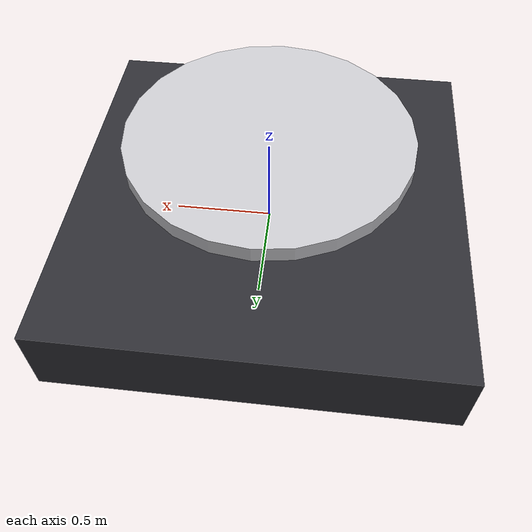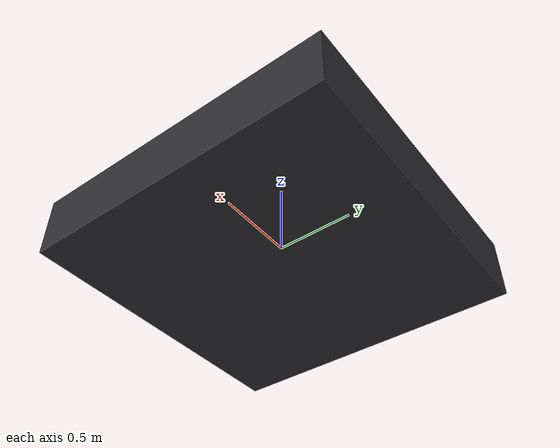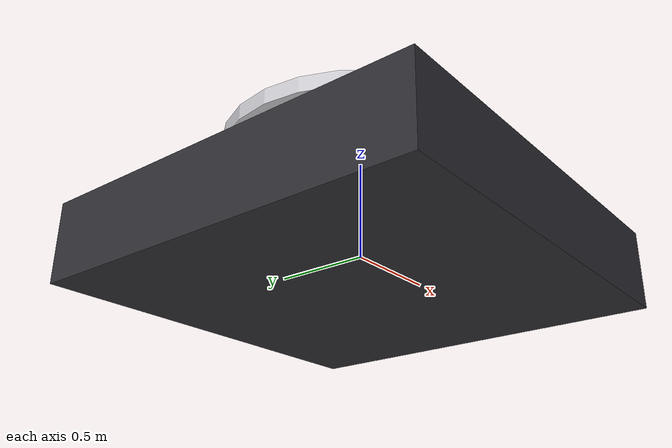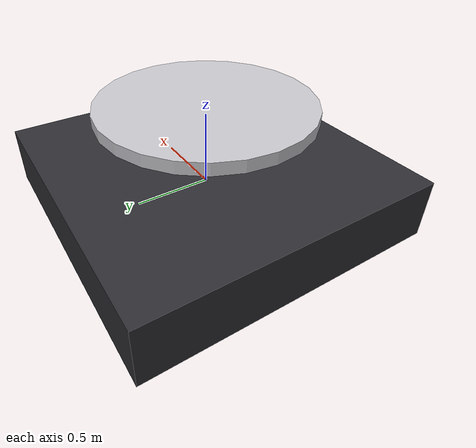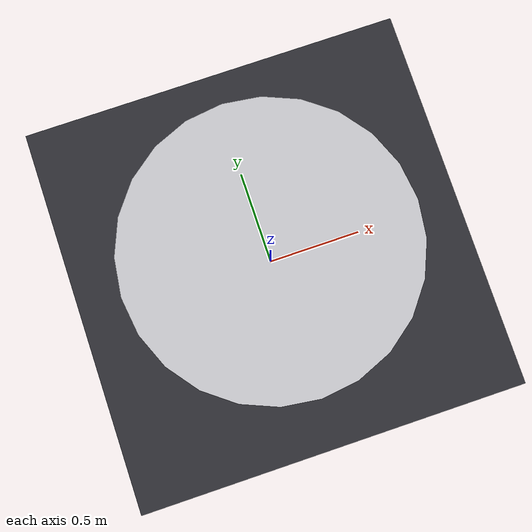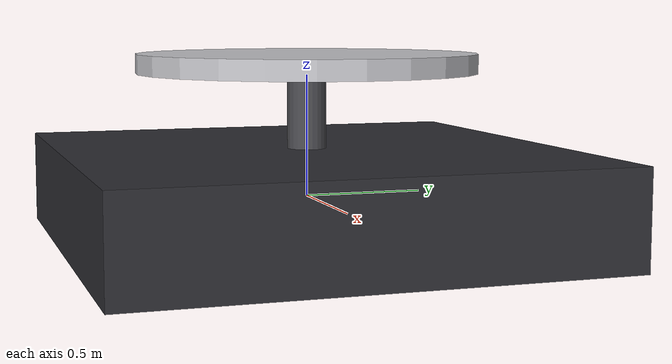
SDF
<?xml version='1.0'?>
<sdf version='1.6'>
  <model name='radar_simple'>
    <static>true</static>
    <link name='link'>
      <pose>0 0 0 0 0 0</pose>
      <!-- Base platform -->
      <visual name='platform'>
        <geometry>
          <box>
            <size>2 2 0.4</size>
          </box>
        </geometry>
        <material>
          <!-- dark metallic base -->
          <ambient>0.12 0.12 0.12 1</ambient>
          <diffuse>0.18 0.18 0.20 1</diffuse>
          <specular>0.3 0.3 0.32 1</specular>
        </material>
      </visual>

      <!-- Radar dish -->
      <visual name='dish'>
        <pose>0 0 0.55 0 0 0</pose>
        <geometry>
          <cylinder>
            <radius>0.7</radius>
            <length>0.08</length>
          </cylinder>
        </geometry>
        <material>
          <!-- metallic dish (light grey) -->
          <ambient>0.6 0.6 0.62 1</ambient>
          <diffuse>0.78 0.78 0.80 1</diffuse>
          <specular>0.9 0.9 0.9 1</specular>
        </material>
      </visual>

      <!-- Radar mast -->
      <visual name='mast'>
        <pose>0 0 0.25 0 0 0</pose>
        <geometry>
          <cylinder>
            <radius>0.08</radius>
            <length>0.5</length>
          </cylinder>
        </geometry>
        <material>
          <!-- mast color darker grey -->
          <ambient>0.25 0.25 0.26 1</ambient>
          <diffuse>0.3 0.3 0.32 1</diffuse>
        </material>
      </visual>

    </link>
  </model>
</sdf>
